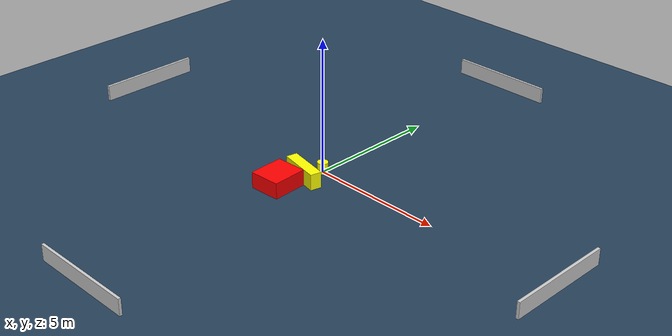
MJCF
<?xml version="1.0" ?>
<mujoco model="generated_environment">
  <option timestep="0.01" integrator="RK4" cone="elliptic"/>
  <default>
    <geom density="1"/>
  </default>
  <asset>
    <texture builtin="gradient" height="3072" name="skybox" rgb1="0.3 0.5 0.7" rgb2="0 0 0" type="skybox" width="512"/>
    <texture builtin="checker" height="300" name="groundplane" rgb1="0.2 0.3 0.4" rgb2="0.1 0.2 0.3" type="2d" width="300"/>
    <material name="groundplane" reflectance="0.2" texrepeat="5 5" texture="groundplane"/>
  </asset>
  <worldbody>
    <light dir="0 0 -1" directional="true" pos="0 0 1.5"/>
    <geom condim="3" friction="0.5 0.005 0.001" material="groundplane" name="floor" pos="0 0 0" size="0 0 0.05" type="plane"/>
    <body name="walls">
      <geom name="wall_1" condim="4" pos="-10.0 0.0 0.3" rgba="0.800000011920929 0.800000011920929 0.800000011920929 1.0" size="0.05 2.0 0.3" type="box"/>
      <geom name="wall_2" condim="4" pos="10.0 0.0 0.3" rgba="0.800000011920929 0.800000011920929 0.800000011920929 1.0" size="0.05 2.0 0.3" type="box"/>
      <geom name="wall_3" condim="4" pos="0.0 -10.0 0.3" rgba="0.800000011920929 0.800000011920929 0.800000011920929 1.0" size="2.0 0.05 0.3" type="box"/>
      <geom name="wall_4" condim="4" pos="0.0 10.0 0.3" rgba="0.800000011920929 0.800000011920929 0.800000011920929 1.0" size="2.0 0.05 0.3" type="box"/>
    </body>
    <body name="robot">
      <joint name="joint_x" type="slide" pos="0 0 0" axis="1 0 0"/>
      <joint name="joint_y" type="slide" pos="0 0 0" axis="0 1 0"/>
      <geom name="robot" type="cylinder" pos="0.0 0.0 0.2" size="0.2 0.2 0.0" mass="5.0" friction="1.0 0.005 0.0001" condim="4" rgba="1.0 1.0 0.0 1.0"/>
    </body>
    <body name="obstacle_1_movable">
      <geom name="obstacle_1_movable" condim="4" pos="-0.08716249836199251 -0.8306745509429737 0.3" euler="0 0 168.30173273617896" friction="0.0 0.005 0.001" rgba="1.0 1.0 0.0 1.0" size="0.7995828716423778 0.21153919385064054 0.3" type="box" mass="0.1"/>
      <joint type="free"/>
    </body>
    <body name="obstacle_2_static">
      <geom name="obstacle_2_static" condim="4" pos="-0.34148036742820176 -1.799026467742954 0.3" euler="0 0 272.72108975432053" friction="0.0 0.005 0.001" rgba="1.0 0.0 0.0 1.0" size="0.6591456604989722 0.5819179324704641 0.3" type="box"/>
    </body>
  </worldbody>
  <actuator>
    <motor name="actuator_x" joint="joint_x" gear="1" ctrlrange="-1 1"/>
    <motor name="actuator_y" joint="joint_y" gear="1" ctrlrange="-1 1"/>
  </actuator>
</mujoco>
